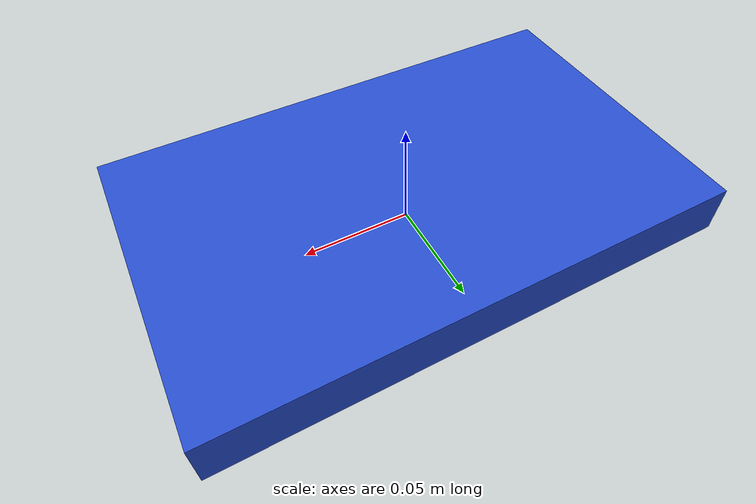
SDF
<?xml version='1.0'?>
<sdf version='1.6'>
  <model name='pick_tray'>
    <link name='link'>
      <pose>0.0 0.0 0.011674 0 -0 0</pose>
      <inertial>
        <!--NOTE: Uses hard wood density (i.e 960 kg/m^3) to calculate the mass
        see https://qtimber.daf.qld.gov.au/guides/wood-density-and-hardness
        -->
        <mass>0.7634836885523328</mass>
        <inertia>
          <ixx>0.00137101</ixx>
          <ixy>0</ixy>
          <ixz>0</ixz>
          <iyy>0.00354935</iyy>
          <iyz>0</iyz>
          <izz>0.00485098</izz>
        </inertia>
        <pose>0 0 0 0 -0 0</pose>
      </inertial>
      <self_collide>0</self_collide>
      <enable_wind>0</enable_wind>
      <kinematic>0</kinematic>
      <pose>0 0 0 0 -0 0</pose>
      <visual name='visual'>
        <geometry>
          <box>
            <size>0.235035 0.144926 0.023348</size>
          </box>
        </geometry>
        <material>
          <script>
            <name>Gazebo/Blue</name>
            <uri>file://media/materials/scripts/gazebo.material</uri>
          </script>
          <shader type='pixel'/>
        </material>
        <pose>0 0 0 0 -0 0</pose>
        <transparency>0</transparency>
        <cast_shadows>false</cast_shadows>
      </visual>
      <collision name='collision'>
        <laser_retro>0</laser_retro>
        <max_contacts>10</max_contacts>
        <pose>0 0 0 0 -0 0</pose>
        <geometry>
          <box>
            <size>0.235035 0.144926 0.023348</size>
          </box>
        </geometry>
        <surface>
          <!--NOTE: Uses dynamic friction of wood on a brick surface
          see https://www.engineeringtoolbox.com/friction-coefficients-d_778.html
          -->
          <friction>
            <ode>
              <mu>0.6</mu>
              <mu2>0.6</mu2>
              <fdir1>0 0 0</fdir1>
              <slip1>0</slip1>
              <slip2>0</slip2>
            </ode>
            <torsional>
              <coefficient>1</coefficient>
              <patch_radius>0</patch_radius>
              <surface_radius>0</surface_radius>
              <use_patch_radius>1</use_patch_radius>
              <ode>
                <slip>0</slip>
              </ode>
            </torsional>
          </friction>
          <bounce>
            <restitution_coefficient>0</restitution_coefficient>
            <threshold>1e+06</threshold>
          </bounce>
          <contact>
            <collide_without_contact>0</collide_without_contact>
            <collide_without_contact_bitmask>1</collide_without_contact_bitmask>
            <collide_bitmask>1</collide_bitmask>
            <ode>
              <soft_cfm>0</soft_cfm>
              <soft_erp>0.2</soft_erp>
              <kp>1e+13</kp>
              <kd>1</kd>
              <max_vel>0.01</max_vel>
              <min_depth>0</min_depth>
            </ode>
            <bullet>
              <split_impulse>1</split_impulse>
              <split_impulse_penetration_threshold>-0.01</split_impulse_penetration_threshold>
              <soft_cfm>0</soft_cfm>
              <soft_erp>0.2</soft_erp>
              <kp>1e+13</kp>
              <kd>1</kd>
            </bullet>
          </contact>
        </surface>
      </collision>
    </link>
    <static>0</static>
    <allow_auto_disable>1</allow_auto_disable>
  </model>
</sdf>
